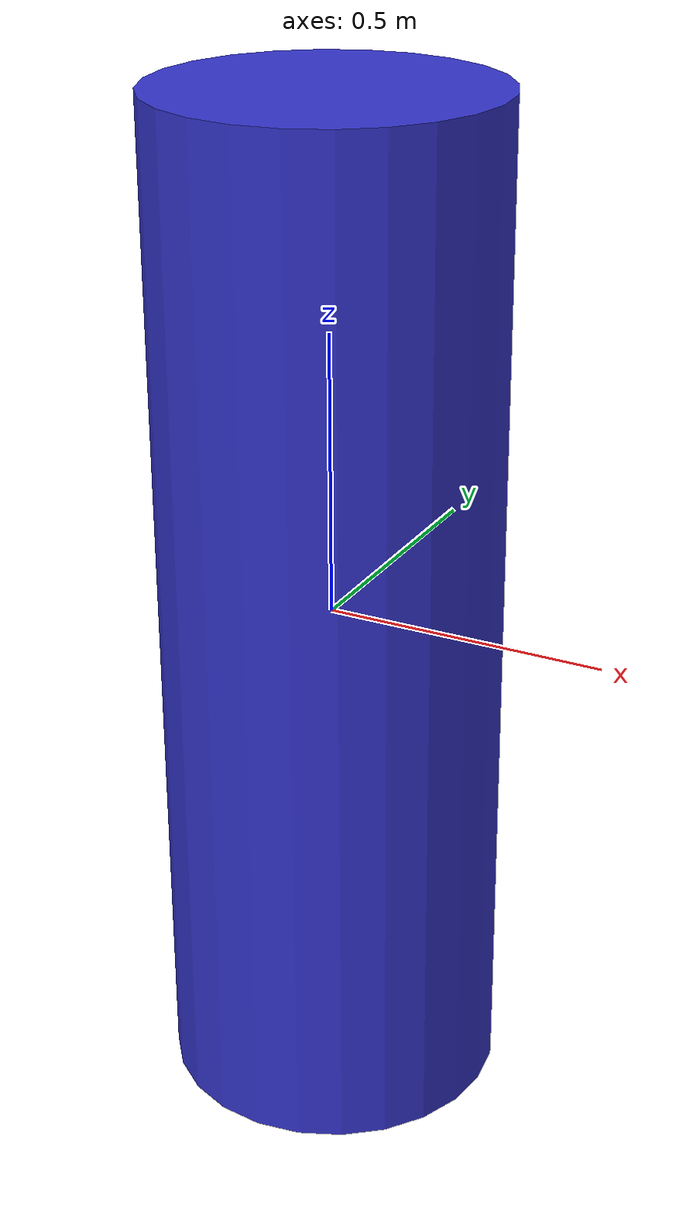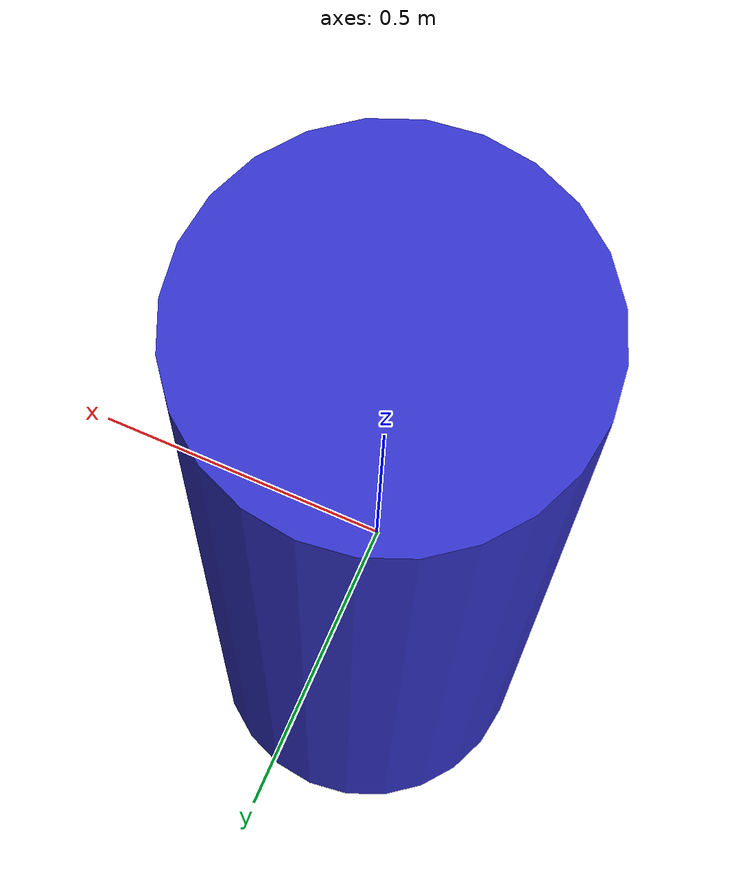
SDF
<?xml version="1.0"?>
<sdf version="1.6">
  <model name="human_walker">
    <link name="link">
      <visual name="mesh">
        <geometry>
          <cylinder>
            <radius>0.3</radius>
            <length>1.8</length>
          </cylinder>
        </geometry>
        <material>
          <ambient>0.2 0.2 0.8 1</ambient>
          <diffuse>0.2 0.2 0.8 1</diffuse>
          <specular>0.1 0.1 0.1 1</specular>
        </material>
      </visual>
    </link>
    <plugin name="gz::sim::systems::Actor" filename="libgz-sim-actor-system.so">
      <trajectory id="0" type="repeat">
        <waypoint time="0"   x="0"  y="0"  z="0"/>
        <waypoint time="4"   x="4"  y="0"  z="0"/>
        <waypoint time="8"   x="4"  y="4"  z="0"/>
        <waypoint time="12"  x="0"  y="4"  z="0"/>
        <waypoint time="16"  x="0"  y="0"  z="0"/>
      </trajectory>
    </plugin>
  </model>
</sdf>
